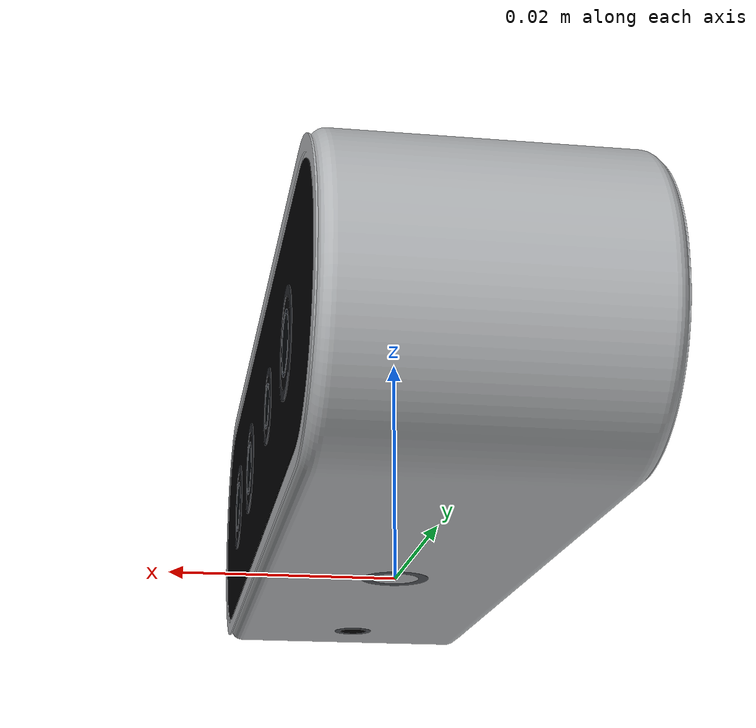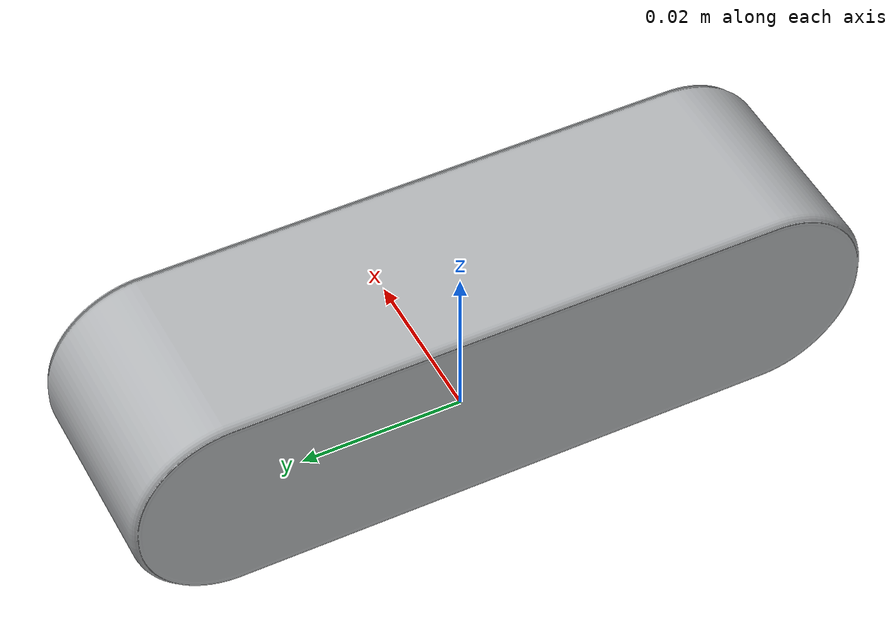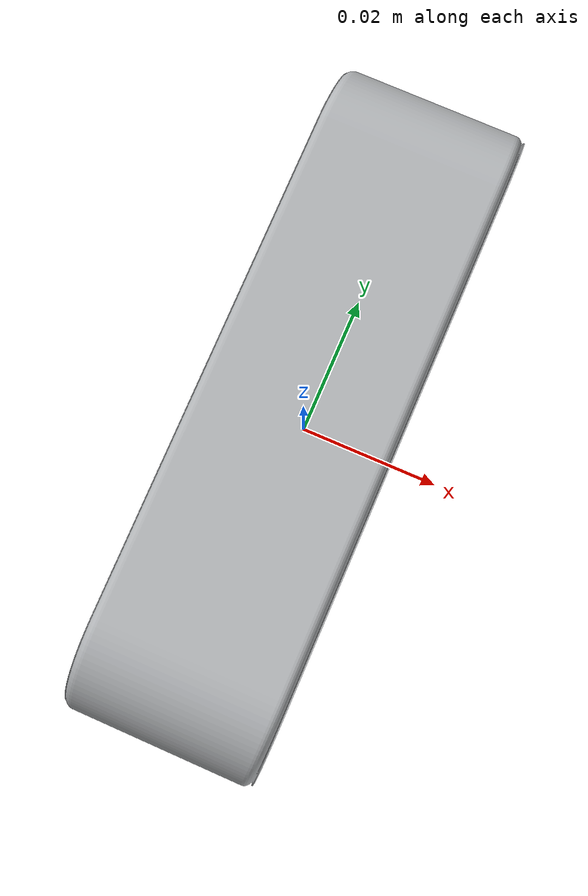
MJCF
<?xml version='1.0' encoding='utf-8'?>
<mujoco model="insta360_realsense_d435i">
  <!--Independent approximate geometry; fixed sites are geometric references, not calibrated optical frames.-->
  <compiler angle="radian" inertiafromgeom="false" strippath="false" />
  <option timestep="0.002" gravity="0 0 -9.81" />
  <asset>
    <mesh name="realsense_d435i_visual_mesh_0" file="../assets/meshes/visual/aluminum.obj" scale="1 1 1" inertia="shell" />
    <mesh name="realsense_d435i_visual_mesh_1" file="../assets/meshes/visual/contact_gold.obj" scale="1 1 1" inertia="shell" />
    <mesh name="realsense_d435i_visual_mesh_2" file="../assets/meshes/visual/glass_coating.obj" scale="1 1 1" inertia="shell" />
    <mesh name="realsense_d435i_visual_mesh_3" file="../assets/meshes/visual/lens_ring.obj" scale="1 1 1" inertia="shell" />
    <mesh name="realsense_d435i_visual_mesh_4" file="../assets/meshes/visual/markings.obj" scale="1 1 1" inertia="shell" />
    <mesh name="realsense_d435i_visual_mesh_5" file="../assets/meshes/visual/optical_glass.obj" scale="1 1 1" inertia="shell" />
    <mesh name="realsense_d435i_visual_mesh_6" file="../assets/meshes/visual/rubber.obj" scale="1 1 1" inertia="shell" />
    <mesh name="realsense_d435i_visual_mesh_7" file="../assets/meshes/visual/screw_metal.obj" scale="1 1 1" inertia="shell" />
    <mesh name="realsense_d435i_visual_mesh_8" file="../assets/meshes/visual/seam.obj" scale="1 1 1" inertia="shell" />
    <mesh name="realsense_d435i_collision_mesh_0" file="../assets/meshes/collision/body.stl" scale="1 1 1" inertia="convex" />
  </asset>
  <worldbody>
    <body name="realsense_d435i_link">
      <inertial pos="0 0 0.0125" mass="0.075" diaginertia="5.453125e-05 7.8125e-06 5.453125e-05" quat="1 0 0 0" />
      <geom name="realsense_d435i_visual_0" type="mesh" mesh="realsense_d435i_visual_mesh_0" pos="0 0 0" quat="1 0 0 0" density="0" group="2" contype="0" conaffinity="0" rgba="0.69 0.7 0.71 1" />
      <geom name="realsense_d435i_visual_1" type="mesh" mesh="realsense_d435i_visual_mesh_1" pos="0 0 0" quat="1 0 0 0" density="0" group="2" contype="0" conaffinity="0" rgba="0.64 0.48 0.2 1" />
      <geom name="realsense_d435i_visual_2" type="mesh" mesh="realsense_d435i_visual_mesh_2" pos="0 0 0" quat="1 0 0 0" density="0" group="2" contype="0" conaffinity="0" rgba="0.075 0.09 0.125 1" />
      <geom name="realsense_d435i_visual_3" type="mesh" mesh="realsense_d435i_visual_mesh_3" pos="0 0 0" quat="1 0 0 0" density="0" group="2" contype="0" conaffinity="0" rgba="0.14 0.15 0.17 1" />
      <geom name="realsense_d435i_visual_4" type="mesh" mesh="realsense_d435i_visual_mesh_4" pos="0 0 0" quat="1 0 0 0" density="0" group="2" contype="0" conaffinity="0" rgba="0.74 0.75 0.76 1" />
      <geom name="realsense_d435i_visual_5" type="mesh" mesh="realsense_d435i_visual_mesh_5" pos="0 0 0" quat="1 0 0 0" density="0" group="2" contype="0" conaffinity="0" rgba="0.021 0.035 0.044 1" />
      <geom name="realsense_d435i_visual_6" type="mesh" mesh="realsense_d435i_visual_mesh_6" pos="0 0 0" quat="1 0 0 0" density="0" group="2" contype="0" conaffinity="0" rgba="0.027 0.029 0.032 1" />
      <geom name="realsense_d435i_visual_7" type="mesh" mesh="realsense_d435i_visual_mesh_7" pos="0 0 0" quat="1 0 0 0" density="0" group="2" contype="0" conaffinity="0" rgba="0.31 0.32 0.34 1" />
      <geom name="realsense_d435i_visual_8" type="mesh" mesh="realsense_d435i_visual_mesh_8" pos="0 0 0" quat="1 0 0 0" density="0" group="2" contype="0" conaffinity="0" rgba="0.008 0.009 0.012 1" />
      <geom name="realsense_d435i_collision_0" type="mesh" mesh="realsense_d435i_collision_mesh_0" pos="0 0 0" quat="1 0 0 0" density="0" group="3" contype="1" conaffinity="1" rgba="0 0 0 0" />
      <site name="realsense_d435i_mount" pos="0 0 0" quat="1 0 0 0" type="sphere" size="0.001" group="4" rgba="0 0 0 0" />
      <site name="realsense_d435i_left_lens_surface" pos="0.0125 -0.025 0.0125" quat="0.500000000002 -0.5 0.499999999998 -0.5" type="sphere" size="0.001" group="4" rgba="0 0 0 0" />
      <site name="realsense_d435i_projector_lens_surface" pos="0.0125 -0.01 0.0125" quat="0.500000000002 -0.5 0.499999999998 -0.5" type="sphere" size="0.001" group="4" rgba="0 0 0 0" />
      <site name="realsense_d435i_right_lens_surface" pos="0.0125 0.025 0.0125" quat="0.500000000002 -0.5 0.499999999998 -0.5" type="sphere" size="0.001" group="4" rgba="0 0 0 0" />
      <site name="realsense_d435i_rgb_lens_surface" pos="0.0125 0.0095 0.0125" quat="0.500000000002 -0.5 0.499999999998 -0.5" type="sphere" size="0.001" group="4" rgba="0 0 0 0" />
    </body>
  </worldbody>
</mujoco>
